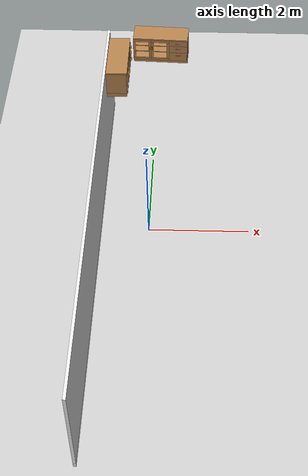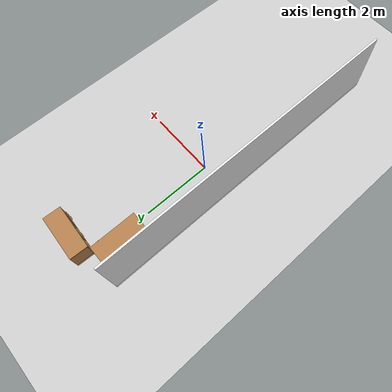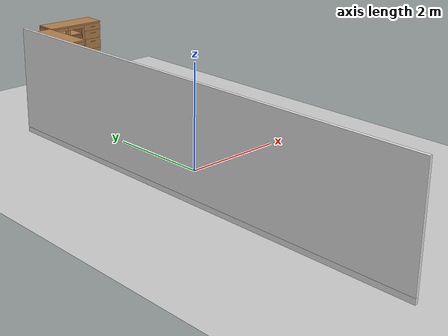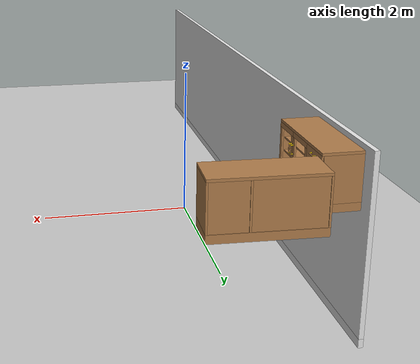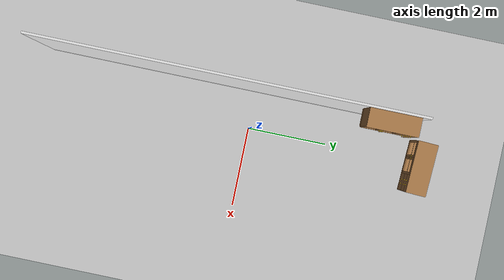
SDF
<sdf version="1.6">
 <world name="default">
  <model name="ground_plane">
   <static>1</static>
   <link name="link">
    <collision name="collision">
     <geometry><plane><normal>0 0 1</normal><size>100 100</size></plane></geometry>
     <surface><friction><ode><mu>100</mu><mu2>50</mu2></ode></friction></surface>
    </collision>
    <visual name="visual">
     <cast_shadows>0</cast_shadows>
     <geometry><plane><normal>0 0 1</normal><size>100 100</size></plane></geometry>
     <material>
      <script><uri>file://media/materials/scripts/gazebo.material</uri><name>Gazebo/Grey</name></script>
     </material>
    </visual>
   </link>
  </model>
  <model name="living_sideboard_0">
   <link name="link">
    <inertial>
     <mass>10</mass>
     <inertia><ixx>1</ixx><ixy>0</ixy><ixz>0</ixz><iyy>1</iyy><iyz>0</iyz><izz>1</izz></inertia>
    </inertial>
    <visual name="left_board">
     <pose>-0.23 0.01 0.3375 0 -0 0</pose>
     <geometry><box><size>0.42 0.02 0.495</size></box></geometry>
     <material>
      <script><uri>model://base_materials/wood/scripts/wood.material</uri><name>base_materials/wood</name></script>
     </material>
    </visual>
    <collision name="collision_left_board">
     <pose>-0.23 0.01 0.3375 0 -0 0</pose>
     <geometry><box><size>0.42 0.02 0.495</size></box></geometry>
    </collision>
    <visual name="back_board">
     <pose>-0.42 0.575 0.2925 0 -0 0</pose>
     <geometry><box><size>0.02 1.11 0.585</size></box></geometry>
     <material>
      <script><uri>model://base_materials/wood/scripts/wood.material</uri><name>base_materials/wood</name></script>
     </material>
    </visual>
    <collision name="collision_back_board">
     <pose>-0.42 0.575 0.2925 0 -0 0</pose>
     <geometry><box><size>0.02 1.11 0.585</size></box></geometry>
    </collision>
    <visual name="right_board">
     <pose>-0.23 1.14 0.3375 0 -0 0</pose>
     <geometry><box><size>0.42 0.02 0.495</size></box></geometry>
     <material>
      <script><uri>model://base_materials/wood/scripts/wood.material</uri><name>base_materials/wood</name></script>
     </material>
    </visual>
    <collision name="collision_right_board">
     <pose>-0.23 1.14 0.3375 0 -0 0</pose>
     <geometry><box><size>0.42 0.02 0.495</size></box></geometry>
    </collision>
    <visual name="center_vertical_board1">
     <pose>-0.23 0.74 0.3375 0 -0 0</pose>
     <geometry><box><size>0.42 0.02 0.495</size></box></geometry>
     <material>
      <script><uri>model://base_materials/wood/scripts/wood.material</uri><name>base_materials/wood</name></script>
     </material>
    </visual>
    <collision name="collision_center_vertical_board1">
     <pose>-0.23 0.74 0.3375 0 -0 0</pose>
     <geometry><box><size>0.42 0.02 0.495</size></box></geometry>
    </collision>
    <visual name="top_board">
     <pose>-0.22 0.575 0.6 0 -0 0</pose>
     <geometry><box><size>0.44 1.15 0.03</size></box></geometry>
     <material>
      <script><uri>model://base_materials/wood/scripts/wood.material</uri><name>base_materials/wood</name></script>
     </material>
    </visual>
    <collision name="collision_top_board">
     <pose>-0.22 0.575 0.6 0 -0 0</pose>
     <geometry><box><size>0.44 1.15 0.03</size></box></geometry>
    </collision>
    <visual name="bottom_board">
     <pose>-0.23 0.575 0.045 0 -0 0</pose>
     <geometry><box><size>0.42 1.15 0.09</size></box></geometry>
     <material>
      <script><uri>model://base_materials/wood/scripts/wood.material</uri><name>base_materials/wood</name></script>
     </material>
    </visual>
    <collision name="collision_bottom_board">
     <pose>-0.23 0.575 0.045 0 -0 0</pose>
     <geometry><box><size>0.42 1.15 0.09</size></box></geometry>
    </collision>
    <visual name="1st_shelf">
     <pose>-0.225 0.37 0.259 0 -0 0</pose>
     <geometry><box><size>0.36 0.72 0.018</size></box></geometry>
     <material>
      <script><uri>model://base_materials/wood/scripts/wood.material</uri><name>base_materials/wood</name></script>
     </material>
    </visual>
    <collision name="collision_1st_shelf">
     <pose>-0.225 0.37 0.259 0 -0 0</pose>
     <geometry><box><size>0.36 0.72 0.018</size></box></geometry>
    </collision>
    <visual name="2nd_shelf">
     <pose>-0.225 0.37 0.407 0 -0 0</pose>
     <geometry><box><size>0.36 0.72 0.018</size></box></geometry>
     <material>
      <script><uri>model://base_materials/wood/scripts/wood.material</uri><name>base_materials/wood</name></script>
     </material>
    </visual>
    <collision name="collision_2nd_shelf">
     <pose>-0.225 0.37 0.407 0 -0 0</pose>
     <geometry><box><size>0.36 0.72 0.018</size></box></geometry>
    </collision>
    <visual name="1st_drawer">
     <pose>-0.2025 0.95 0.52 0 -0 0</pose>
     <geometry><box><size>0.405 0.38 0.13</size></box></geometry>
     <material>
      <script><uri>model://base_materials/wood/scripts/wood.material</uri><name>base_materials/wood</name></script>
     </material>
    </visual>
    <collision name="collision_1st_drawer">
     <pose>-0.2025 0.95 0.52 0 -0 0</pose>
     <geometry><box><size>0.405 0.38 0.13</size></box></geometry>
    </collision>
    <visual name="1st_drawer_handle_l1">
     <pose>0.015 0.9015 0.535 3.14159 1.57079 3.14159</pose>
     <geometry><cylinder><radius>0.006</radius><length>0.03</length></cylinder></geometry>
     <material>
      <ambient>1 0.84314 0 1</ambient>
      <diffuse>1 0.84314 0 1</diffuse>
      <specular>0.1 0.1 0.1 1</specular>
     </material>
    </visual>
    <collision name="collision_1st_drawer_handle_l1">
     <pose>0.015 0.9015 0.535 3.14159 1.57079 3.14159</pose>
     <geometry><cylinder><radius>0.006</radius><length>0.03</length></cylinder></geometry>
    </collision>
    <visual name="1st_drawer_handle_l2">
     <pose>0.03 0.9015 0.535 0 -0 0</pose>
     <geometry><sphere><radius>0.006</radius></sphere></geometry>
     <material>
      <ambient>1 0.84314 0 1</ambient>
      <diffuse>1 0.84314 0 1</diffuse>
      <specular>0.1 0.1 0.1 1</specular>
     </material>
    </visual>
    <collision name="collision_1st_drawer_handle_l2">
     <pose>0.03 0.9015 0.535 0 -0 0</pose>
     <geometry><sphere><radius>0.006</radius></sphere></geometry>
    </collision>
    <visual name="1st_drawer_handle_r1">
     <pose>0.015 0.9985 0.535 3.14159 1.57079 3.14159</pose>
     <geometry><cylinder><radius>0.006</radius><length>0.03</length></cylinder></geometry>
     <material>
      <ambient>1 0.84314 0 1</ambient>
      <diffuse>1 0.84314 0 1</diffuse>
      <specular>0.1 0.1 0.1 1</specular>
     </material>
    </visual>
    <collision name="collision_1st_drawer_handle_r1">
     <pose>0.015 0.9985 0.535 3.14159 1.57079 3.14159</pose>
     <geometry><cylinder><radius>0.006</radius><length>0.03</length></cylinder></geometry>
    </collision>
    <visual name="1st_drawer_handle_r2">
     <pose>0.03 0.9985 0.535 0 -0 0</pose>
     <geometry><sphere><radius>0.006</radius></sphere></geometry>
     <material>
      <ambient>1 0.84314 0 1</ambient>
      <diffuse>1 0.84314 0 1</diffuse>
      <specular>0.1 0.1 0.1 1</specular>
     </material>
    </visual>
    <collision name="collision_1st_drawer_handle_r2">
     <pose>0.03 0.9985 0.535 0 -0 0</pose>
     <geometry><sphere><radius>0.006</radius></sphere></geometry>
    </collision>
    <visual name="1st_drawer_handle_center">
     <pose>0.03 0.95 0.535 1.5708 -0 0</pose>
     <geometry><cylinder><radius>0.006</radius><length>0.097</length></cylinder></geometry>
     <material>
      <script><uri>model://base_materials/wood/scripts/wood.material</uri><name>base_materials/wood</name></script>
     </material>
    </visual>
    <collision name="collision_1st_drawer_handle_center">
     <pose>0.03 0.95 0.535 1.5708 -0 0</pose>
     <geometry><cylinder><radius>0.006</radius><length>0.097</length></cylinder></geometry>
    </collision>
    <visual name="2nd_drawer">
     <pose>-0.2025 0.95 0.37 0 -0 0</pose>
     <geometry><box><size>0.405 0.38 0.17</size></box></geometry>
     <material>
      <script><uri>model://base_materials/wood/scripts/wood.material</uri><name>base_materials/wood</name></script>
     </material>
    </visual>
    <collision name="collision_2nd_drawer">
     <pose>-0.2025 0.95 0.37 0 -0 0</pose>
     <geometry><box><size>0.405 0.38 0.17</size></box></geometry>
    </collision>
    <visual name="2nd_drawer_handle_l1">
     <pose>0.015 0.9015 0.405 3.14159 1.57079 3.14159</pose>
     <geometry><cylinder><radius>0.006</radius><length>0.03</length></cylinder></geometry>
     <material>
      <ambient>1 0.84314 0 1</ambient>
      <diffuse>1 0.84314 0 1</diffuse>
      <specular>0.1 0.1 0.1 1</specular>
     </material>
    </visual>
    <collision name="collision_2nd_drawer_handle_l1">
     <pose>0.015 0.9015 0.405 3.14159 1.57079 3.14159</pose>
     <geometry><cylinder><radius>0.006</radius><length>0.03</length></cylinder></geometry>
    </collision>
    <visual name="2nd_drawer_handle_l2">
     <pose>0.03 0.9015 0.405 0 -0 0</pose>
     <geometry><sphere><radius>0.006</radius></sphere></geometry>
     <material>
      <ambient>1 0.84314 0 1</ambient>
      <diffuse>1 0.84314 0 1</diffuse>
      <specular>0.1 0.1 0.1 1</specular>
     </material>
    </visual>
    <collision name="collision_2nd_drawer_handle_l2">
     <pose>0.03 0.9015 0.405 0 -0 0</pose>
     <geometry><sphere><radius>0.006</radius></sphere></geometry>
    </collision>
    <visual name="2nd_drawer_handle_r1">
     <pose>0.015 0.9985 0.405 3.14159 1.57079 3.14159</pose>
     <geometry><cylinder><radius>0.006</radius><length>0.03</length></cylinder></geometry>
     <material>
      <ambient>1 0.84314 0 1</ambient>
      <diffuse>1 0.84314 0 1</diffuse>
      <specular>0.1 0.1 0.1 1</specular>
     </material>
    </visual>
    <collision name="collision_2nd_drawer_handle_r1">
     <pose>0.015 0.9985 0.405 3.14159 1.57079 3.14159</pose>
     <geometry><cylinder><radius>0.006</radius><length>0.03</length></cylinder></geometry>
    </collision>
    <visual name="2nd_drawer_handle_r2">
     <pose>0.03 0.9985 0.405 0 -0 0</pose>
     <geometry><sphere><radius>0.006</radius></sphere></geometry>
     <material>
      <ambient>1 0.84314 0 1</ambient>
      <diffuse>1 0.84314 0 1</diffuse>
      <specular>0.1 0.1 0.1 1</specular>
     </material>
    </visual>
    <collision name="collision_2nd_drawer_handle_r2">
     <pose>0.03 0.9985 0.405 0 -0 0</pose>
     <geometry><sphere><radius>0.006</radius></sphere></geometry>
    </collision>
    <visual name="2nd_drawer_handle_center">
     <pose>0.03 0.95 0.405 1.5708 -0 0</pose>
     <geometry><cylinder><radius>0.006</radius><length>0.097</length></cylinder></geometry>
     <material>
      <script><uri>model://base_materials/wood/scripts/wood.material</uri><name>base_materials/wood</name></script>
     </material>
    </visual>
    <collision name="collision_2nd_drawer_handle_center">
     <pose>0.03 0.95 0.405 1.5708 -0 0</pose>
     <geometry><cylinder><radius>0.006</radius><length>0.097</length></cylinder></geometry>
    </collision>
    <visual name="3rd_drawer">
     <pose>-0.2025 0.95 0.18 0 -0 0</pose>
     <geometry><box><size>0.405 0.38 0.21</size></box></geometry>
     <material>
      <script><uri>model://base_materials/wood/scripts/wood.material</uri><name>base_materials/wood</name></script>
     </material>
    </visual>
    <collision name="collision_3rd_drawer">
     <pose>-0.2025 0.95 0.18 0 -0 0</pose>
     <geometry><box><size>0.405 0.38 0.21</size></box></geometry>
    </collision>
    <visual name="3rd_drawer_handle_l1">
     <pose>0.015 0.9015 0.235 3.14159 1.57079 3.14159</pose>
     <geometry><cylinder><radius>0.006</radius><length>0.03</length></cylinder></geometry>
     <material>
      <ambient>1 0.84314 0 1</ambient>
      <diffuse>1 0.84314 0 1</diffuse>
      <specular>0.1 0.1 0.1 1</specular>
     </material>
    </visual>
    <collision name="collision_3rd_drawer_handle_l1">
     <pose>0.015 0.9015 0.235 3.14159 1.57079 3.14159</pose>
     <geometry><cylinder><radius>0.006</radius><length>0.03</length></cylinder></geometry>
    </collision>
    <visual name="3rd_drawer_handle_l2">
     <pose>0.03 0.9015 0.235 0 -0 0</pose>
     <geometry><sphere><radius>0.006</radius></sphere></geometry>
     <material>
      <ambient>1 0.84314 0 1</ambient>
      <diffuse>1 0.84314 0 1</diffuse>
      <specular>0.1 0.1 0.1 1</specular>
     </material>
    </visual>
    <collision name="collision_3rd_drawer_handle_l2">
     <pose>0.03 0.9015 0.235 0 -0 0</pose>
     <geometry><sphere><radius>0.006</radius></sphere></geometry>
    </collision>
    <visual name="3rd_drawer_handle_r1">
     <pose>0.015 0.9985 0.235 3.14159 1.57079 3.14159</pose>
     <geometry><cylinder><radius>0.006</radius><length>0.03</length></cylinder></geometry>
     <material>
      <ambient>1 0.84314 0 1</ambient>
      <diffuse>1 0.84314 0 1</diffuse>
      <specular>0.1 0.1 0.1 1</specular>
     </material>
    </visual>
    <collision name="collision_3rd_drawer_handle_r1">
     <pose>0.015 0.9985 0.235 3.14159 1.57079 3.14159</pose>
     <geometry><cylinder><radius>0.006</radius><length>0.03</length></cylinder></geometry>
    </collision>
    <visual name="3rd_drawer_handle_r2">
     <pose>0.03 0.9985 0.235 0 -0 0</pose>
     <geometry><sphere><radius>0.006</radius></sphere></geometry>
     <material>
      <ambient>1 0.84314 0 1</ambient>
      <diffuse>1 0.84314 0 1</diffuse>
      <specular>0.1 0.1 0.1 1</specular>
     </material>
    </visual>
    <collision name="collision_3rd_drawer_handle_r2">
     <pose>0.03 0.9985 0.235 0 -0 0</pose>
     <geometry><sphere><radius>0.006</radius></sphere></geometry>
    </collision>
    <visual name="3rd_drawer_handle_center">
     <pose>0.03 0.95 0.235 1.5708 -0 0</pose>
     <geometry><cylinder><radius>0.006</radius><length>0.097</length></cylinder></geometry>
     <material>
      <script><uri>model://base_materials/wood/scripts/wood.material</uri><name>base_materials/wood</name></script>
     </material>
    </visual>
    <collision name="collision_3rd_drawer_handle_center">
     <pose>0.03 0.95 0.235 1.5708 -0 0</pose>
     <geometry><cylinder><radius>0.006</radius><length>0.097</length></cylinder></geometry>
    </collision>
    <visual name="left_door_left_frame">
     <pose>-0.01 0.025 0.3275 0 -0 0</pose>
     <geometry><box><size>0.02 0.05 0.405</size></box></geometry>
     <material>
      <script><uri>model://base_materials/wood/scripts/wood.material</uri><name>base_materials/wood</name></script>
     </material>
    </visual>
    <collision name="collision_left_door_left_frame">
     <pose>-0.01 0.025 0.3275 0 -0 0</pose>
     <geometry><box><size>0.02 0.05 0.405</size></box></geometry>
    </collision>
    <visual name="left_door_right_frame">
     <pose>-0.01 0.355 0.3275 0 -0 0</pose>
     <geometry><box><size>0.02 0.05 0.405</size></box></geometry>
     <material>
      <script><uri>model://base_materials/wood/scripts/wood.material</uri><name>base_materials/wood</name></script>
     </material>
    </visual>
    <collision name="collision_left_door_right_frame">
     <pose>-0.01 0.355 0.3275 0 -0 0</pose>
     <geometry><box><size>0.02 0.05 0.405</size></box></geometry>
    </collision>
    <visual name="left_door_handle_top1">
     <pose>0.015 0.355 0.4475 3.14159 1.57079 3.14159</pose>
     <geometry><cylinder><radius>0.006</radius><length>0.03</length></cylinder></geometry>
     <material>
      <ambient>1 0.84314 0 1</ambient>
      <diffuse>1 0.84314 0 1</diffuse>
      <specular>0.1 0.1 0.1 1</specular>
     </material>
    </visual>
    <collision name="collision_left_door_handle_top1">
     <pose>0.015 0.355 0.4475 3.14159 1.57079 3.14159</pose>
     <geometry><cylinder><radius>0.006</radius><length>0.03</length></cylinder></geometry>
    </collision>
    <visual name="left_door_handle_top2">
     <pose>0.03 0.355 0.4475 0 -0 0</pose>
     <geometry><sphere><radius>0.006</radius></sphere></geometry>
     <material>
      <ambient>1 0.84314 0 1</ambient>
      <diffuse>1 0.84314 0 1</diffuse>
      <specular>0.1 0.1 0.1 1</specular>
     </material>
    </visual>
    <collision name="collision_left_door_handle_top2">
     <pose>0.03 0.355 0.4475 0 -0 0</pose>
     <geometry><sphere><radius>0.006</radius></sphere></geometry>
    </collision>
    <visual name="left_door_handle_bottom1">
     <pose>0.015 0.355 0.3505 3.14159 1.57079 3.14159</pose>
     <geometry><cylinder><radius>0.006</radius><length>0.03</length></cylinder></geometry>
     <material>
      <ambient>1 0.84314 0 1</ambient>
      <diffuse>1 0.84314 0 1</diffuse>
      <specular>0.1 0.1 0.1 1</specular>
     </material>
    </visual>
    <collision name="collision_left_door_handle_bottom1">
     <pose>0.015 0.355 0.3505 3.14159 1.57079 3.14159</pose>
     <geometry><cylinder><radius>0.006</radius><length>0.03</length></cylinder></geometry>
    </collision>
    <visual name="left_door_handle_bottom2">
     <pose>0.03 0.355 0.3505 0 -0 0</pose>
     <geometry><sphere><radius>0.006</radius></sphere></geometry>
     <material>
      <ambient>1 0.84314 0 1</ambient>
      <diffuse>1 0.84314 0 1</diffuse>
      <specular>0.1 0.1 0.1 1</specular>
     </material>
    </visual>
    <collision name="collision_left_door_handle_bottom2">
     <pose>0.03 0.355 0.3505 0 -0 0</pose>
     <geometry><sphere><radius>0.006</radius></sphere></geometry>
    </collision>
    <visual name="left_door_handle_center">
     <pose>0.03 0.355 0.399 0 -0 0</pose>
     <geometry><cylinder><radius>0.006</radius><length>0.097</length></cylinder></geometry>
     <material>
      <script><uri>model://base_materials/wood/scripts/wood.material</uri><name>base_materials/wood</name></script>
     </material>
    </visual>
    <collision name="collision_left_door_handle_center">
     <pose>0.03 0.355 0.399 0 -0 0</pose>
     <geometry><cylinder><radius>0.006</radius><length>0.097</length></cylinder></geometry>
    </collision>
    <visual name="left_door_top_frame">
     <pose>-0.01 0.19 0.5575 0 -0 0</pose>
     <geometry><box><size>0.02 0.38 0.055</size></box></geometry>
     <material>
      <script><uri>model://base_materials/wood/scripts/wood.material</uri><name>base_materials/wood</name></script>
     </material>
    </visual>
    <collision name="collision_left_door_top_frame">
     <pose>-0.01 0.19 0.5575 0 -0 0</pose>
     <geometry><box><size>0.02 0.38 0.055</size></box></geometry>
    </collision>
    <visual name="left_door_bottom_frame">
     <pose>-0.01 0.19 0.1 0 -0 0</pose>
     <geometry><box><size>0.02 0.38 0.05</size></box></geometry>
     <material>
      <script><uri>model://base_materials/wood/scripts/wood.material</uri><name>base_materials/wood</name></script>
     </material>
    </visual>
    <collision name="collision_left_door_bottom_frame">
     <pose>-0.01 0.19 0.1 0 -0 0</pose>
     <geometry><box><size>0.02 0.38 0.05</size></box></geometry>
    </collision>
    <visual name="right_door_left_frame">
     <pose>-0.01 0.405 0.3275 0 -0 0</pose>
     <geometry><box><size>0.02 0.05 0.405</size></box></geometry>
     <material>
      <script><uri>model://base_materials/wood/scripts/wood.material</uri><name>base_materials/wood</name></script>
     </material>
    </visual>
    <collision name="collision_right_door_left_frame">
     <pose>-0.01 0.405 0.3275 0 -0 0</pose>
     <geometry><box><size>0.02 0.05 0.405</size></box></geometry>
    </collision>
    <visual name="right_door_right_frame">
     <pose>-0.01 0.735 0.3275 0 -0 0</pose>
     <geometry><box><size>0.02 0.05 0.405</size></box></geometry>
     <material>
      <script><uri>model://base_materials/wood/scripts/wood.material</uri><name>base_materials/wood</name></script>
     </material>
    </visual>
    <collision name="collision_right_door_right_frame">
     <pose>-0.01 0.735 0.3275 0 -0 0</pose>
     <geometry><box><size>0.02 0.05 0.405</size></box></geometry>
    </collision>
    <visual name="right_door_top_frame">
     <pose>-0.01 0.57 0.5575 0 -0 0</pose>
     <geometry><box><size>0.02 0.38 0.055</size></box></geometry>
     <material>
      <script><uri>model://base_materials/wood/scripts/wood.material</uri><name>base_materials/wood</name></script>
     </material>
    </visual>
    <collision name="collision_right_door_top_frame">
     <pose>-0.01 0.57 0.5575 0 -0 0</pose>
     <geometry><box><size>0.02 0.38 0.055</size></box></geometry>
    </collision>
    <visual name="right_door_bottom_frame">
     <pose>-0.01 0.57 0.1 0 -0 0</pose>
     <geometry><box><size>0.02 0.38 0.05</size></box></geometry>
     <material>
      <script><uri>model://base_materials/wood/scripts/wood.material</uri><name>base_materials/wood</name></script>
     </material>
    </visual>
    <collision name="collision_right_door_bottom_frame">
     <pose>-0.01 0.57 0.1 0 -0 0</pose>
     <geometry><box><size>0.02 0.38 0.05</size></box></geometry>
    </collision>
    <visual name="right_door_handle_top1">
     <pose>0.015 0.405 0.4475 3.14159 1.57079 3.14159</pose>
     <geometry><cylinder><radius>0.006</radius><length>0.03</length></cylinder></geometry>
     <material>
      <ambient>1 0.84314 0 1</ambient>
      <diffuse>1 0.84314 0 1</diffuse>
      <specular>0.1 0.1 0.1 1</specular>
     </material>
    </visual>
    <collision name="collision_right_door_handle_top1">
     <pose>0.015 0.405 0.4475 3.14159 1.57079 3.14159</pose>
     <geometry><cylinder><radius>0.006</radius><length>0.03</length></cylinder></geometry>
    </collision>
    <visual name="right_door_handle_top2">
     <pose>0.03 0.405 0.4475 0 -0 0</pose>
     <geometry><sphere><radius>0.006</radius></sphere></geometry>
     <material>
      <ambient>1 0.84314 0 1</ambient>
      <diffuse>1 0.84314 0 1</diffuse>
      <specular>0.1 0.1 0.1 1</specular>
     </material>
    </visual>
    <collision name="collision_right_door_handle_top2">
     <pose>0.03 0.405 0.4475 0 -0 0</pose>
     <geometry><sphere><radius>0.006</radius></sphere></geometry>
    </collision>
    <visual name="right_door_handle_bottom1">
     <pose>0.015 0.405 0.3505 3.14159 1.57079 3.14159</pose>
     <geometry><cylinder><radius>0.006</radius><length>0.03</length></cylinder></geometry>
     <material>
      <ambient>1 0.84314 0 1</ambient>
      <diffuse>1 0.84314 0 1</diffuse>
      <specular>0.1 0.1 0.1 1</specular>
     </material>
    </visual>
    <collision name="collision_right_door_handle_bottom1">
     <pose>0.015 0.405 0.3505 3.14159 1.57079 3.14159</pose>
     <geometry><cylinder><radius>0.006</radius><length>0.03</length></cylinder></geometry>
    </collision>
    <visual name="right_door_handle_bottom2">
     <pose>0.03 0.405 0.3505 0 -0 0</pose>
     <geometry><sphere><radius>0.006</radius></sphere></geometry>
     <material>
      <ambient>1 0.84314 0 1</ambient>
      <diffuse>1 0.84314 0 1</diffuse>
      <specular>0.1 0.1 0.1 1</specular>
     </material>
    </visual>
    <collision name="collision_right_door_handle_bottom2">
     <pose>0.03 0.405 0.3505 0 -0 0</pose>
     <geometry><sphere><radius>0.006</radius></sphere></geometry>
    </collision>
    <visual name="right_door_handle_center">
     <pose>0.03 0.405 0.399 0 -0 0</pose>
     <geometry><cylinder><radius>0.006</radius><length>0.097</length></cylinder></geometry>
     <material>
      <script><uri>model://base_materials/wood/scripts/wood.material</uri><name>base_materials/wood</name></script>
     </material>
    </visual>
    <collision name="collision_right_door_handle_center">
     <pose>0.03 0.4 0.399 0 -0 0</pose>
     <geometry><cylinder><radius>0.006</radius><length>0.097</length></cylinder></geometry>
    </collision>
    <velocity_decay><linear>0</linear><angular>0</angular></velocity_decay>
   </link>
   <static>1</static>
   <pose>-0.465342 3.57264 1.4001 0 0 -1.61604</pose>
  </model>
  <model name="living_sideboard_1">
   <link name="link">
    <inertial>
     <mass>10</mass>
     <inertia><ixx>1</ixx><ixy>0</ixy><ixz>0</ixz><iyy>1</iyy><iyz>0</iyz><izz>1</izz></inertia>
    </inertial>
    <visual name="left_board">
     <pose>-0.23 0.01 0.3375 0 -0 0</pose>
     <geometry><box><size>0.42 0.02 0.495</size></box></geometry>
     <material>
      <script><uri>model://base_materials/wood/scripts/wood.material</uri><name>base_materials/wood</name></script>
     </material>
    </visual>
    <collision name="collision_left_board">
     <pose>-0.23 0.01 0.3375 0 -0 0</pose>
     <geometry><box><size>0.42 0.02 0.495</size></box></geometry>
    </collision>
    <visual name="back_board">
     <pose>-0.42 0.575 0.2925 0 -0 0</pose>
     <geometry><box><size>0.02 1.11 0.585</size></box></geometry>
     <material>
      <script><uri>model://base_materials/wood/scripts/wood.material</uri><name>base_materials/wood</name></script>
     </material>
    </visual>
    <collision name="collision_back_board">
     <pose>-0.42 0.575 0.2925 0 -0 0</pose>
     <geometry><box><size>0.02 1.11 0.585</size></box></geometry>
    </collision>
    <visual name="right_board">
     <pose>-0.23 1.14 0.3375 0 -0 0</pose>
     <geometry><box><size>0.42 0.02 0.495</size></box></geometry>
     <material>
      <script><uri>model://base_materials/wood/scripts/wood.material</uri><name>base_materials/wood</name></script>
     </material>
    </visual>
    <collision name="collision_right_board">
     <pose>-0.23 1.14 0.3375 0 -0 0</pose>
     <geometry><box><size>0.42 0.02 0.495</size></box></geometry>
    </collision>
    <visual name="center_vertical_board1">
     <pose>-0.23 0.74 0.3375 0 -0 0</pose>
     <geometry><box><size>0.42 0.02 0.495</size></box></geometry>
     <material>
      <script><uri>model://base_materials/wood/scripts/wood.material</uri><name>base_materials/wood</name></script>
     </material>
    </visual>
    <collision name="collision_center_vertical_board1">
     <pose>-0.23 0.74 0.3375 0 -0 0</pose>
     <geometry><box><size>0.42 0.02 0.495</size></box></geometry>
    </collision>
    <visual name="top_board">
     <pose>-0.22 0.575 0.6 0 -0 0</pose>
     <geometry><box><size>0.44 1.15 0.03</size></box></geometry>
     <material>
      <script><uri>model://base_materials/wood/scripts/wood.material</uri><name>base_materials/wood</name></script>
     </material>
    </visual>
    <collision name="collision_top_board">
     <pose>-0.22 0.575 0.6 0 -0 0</pose>
     <geometry><box><size>0.44 1.15 0.03</size></box></geometry>
    </collision>
    <visual name="bottom_board">
     <pose>-0.23 0.575 0.045 0 -0 0</pose>
     <geometry><box><size>0.42 1.15 0.09</size></box></geometry>
     <material>
      <script><uri>model://base_materials/wood/scripts/wood.material</uri><name>base_materials/wood</name></script>
     </material>
    </visual>
    <collision name="collision_bottom_board">
     <pose>-0.23 0.575 0.045 0 -0 0</pose>
     <geometry><box><size>0.42 1.15 0.09</size></box></geometry>
    </collision>
    <visual name="1st_shelf">
     <pose>-0.225 0.37 0.259 0 -0 0</pose>
     <geometry><box><size>0.36 0.72 0.018</size></box></geometry>
     <material>
      <script><uri>model://base_materials/wood/scripts/wood.material</uri><name>base_materials/wood</name></script>
     </material>
    </visual>
    <collision name="collision_1st_shelf">
     <pose>-0.225 0.37 0.259 0 -0 0</pose>
     <geometry><box><size>0.36 0.72 0.018</size></box></geometry>
    </collision>
    <visual name="2nd_shelf">
     <pose>-0.225 0.37 0.407 0 -0 0</pose>
     <geometry><box><size>0.36 0.72 0.018</size></box></geometry>
     <material>
      <script><uri>model://base_materials/wood/scripts/wood.material</uri><name>base_materials/wood</name></script>
     </material>
    </visual>
    <collision name="collision_2nd_shelf">
     <pose>-0.225 0.37 0.407 0 -0 0</pose>
     <geometry><box><size>0.36 0.72 0.018</size></box></geometry>
    </collision>
    <visual name="1st_drawer">
     <pose>-0.2025 0.95 0.52 0 -0 0</pose>
     <geometry><box><size>0.405 0.38 0.13</size></box></geometry>
     <material>
      <script><uri>model://base_materials/wood/scripts/wood.material</uri><name>base_materials/wood</name></script>
     </material>
    </visual>
    <collision name="collision_1st_drawer">
     <pose>-0.2025 0.95 0.52 0 -0 0</pose>
     <geometry><box><size>0.405 0.38 0.13</size></box></geometry>
    </collision>
    <visual name="1st_drawer_handle_l1">
     <pose>0.015 0.9015 0.535 3.14159 1.57079 3.14159</pose>
     <geometry><cylinder><radius>0.006</radius><length>0.03</length></cylinder></geometry>
     <material>
      <ambient>1 0.84314 0 1</ambient>
      <diffuse>1 0.84314 0 1</diffuse>
      <specular>0.1 0.1 0.1 1</specular>
     </material>
    </visual>
    <collision name="collision_1st_drawer_handle_l1">
     <pose>0.015 0.9015 0.535 3.14159 1.57079 3.14159</pose>
     <geometry><cylinder><radius>0.006</radius><length>0.03</length></cylinder></geometry>
    </collision>
    <visual name="1st_drawer_handle_l2">
     <pose>0.03 0.9015 0.535 0 -0 0</pose>
     <geometry><sphere><radius>0.006</radius></sphere></geometry>
     <material>
      <ambient>1 0.84314 0 1</ambient>
      <diffuse>1 0.84314 0 1</diffuse>
      <specular>0.1 0.1 0.1 1</specular>
     </material>
    </visual>
    <collision name="collision_1st_drawer_handle_l2">
     <pose>0.03 0.9015 0.535 0 -0 0</pose>
     <geometry><sphere><radius>0.006</radius></sphere></geometry>
    </collision>
    <visual name="1st_drawer_handle_r1">
     <pose>0.015 0.9985 0.535 3.14159 1.57079 3.14159</pose>
     <geometry><cylinder><radius>0.006</radius><length>0.03</length></cylinder></geometry>
     <material>
      <ambient>1 0.84314 0 1</ambient>
      <diffuse>1 0.84314 0 1</diffuse>
      <specular>0.1 0.1 0.1 1</specular>
     </material>
    </visual>
    <collision name="collision_1st_drawer_handle_r1">
     <pose>0.015 0.9985 0.535 3.14159 1.57079 3.14159</pose>
     <geometry><cylinder><radius>0.006</radius><length>0.03</length></cylinder></geometry>
    </collision>
    <visual name="1st_drawer_handle_r2">
     <pose>0.03 0.9985 0.535 0 -0 0</pose>
     <geometry><sphere><radius>0.006</radius></sphere></geometry>
     <material>
      <ambient>1 0.84314 0 1</ambient>
      <diffuse>1 0.84314 0 1</diffuse>
      <specular>0.1 0.1 0.1 1</specular>
     </material>
    </visual>
    <collision name="collision_1st_drawer_handle_r2">
     <pose>0.03 0.9985 0.535 0 -0 0</pose>
     <geometry><sphere><radius>0.006</radius></sphere></geometry>
    </collision>
    <visual name="1st_drawer_handle_center">
     <pose>0.03 0.95 0.535 1.5708 -0 0</pose>
     <geometry><cylinder><radius>0.006</radius><length>0.097</length></cylinder></geometry>
     <material>
      <script><uri>model://base_materials/wood/scripts/wood.material</uri><name>base_materials/wood</name></script>
     </material>
    </visual>
    <collision name="collision_1st_drawer_handle_center">
     <pose>0.03 0.95 0.535 1.5708 -0 0</pose>
     <geometry><cylinder><radius>0.006</radius><length>0.097</length></cylinder></geometry>
    </collision>
    <visual name="2nd_drawer">
     <pose>-0.2025 0.95 0.37 0 -0 0</pose>
     <geometry><box><size>0.405 0.38 0.17</size></box></geometry>
     <material>
      <script><uri>model://base_materials/wood/scripts/wood.material</uri><name>base_materials/wood</name></script>
     </material>
    </visual>
    <collision name="collision_2nd_drawer">
     <pose>-0.2025 0.95 0.37 0 -0 0</pose>
     <geometry><box><size>0.405 0.38 0.17</size></box></geometry>
    </collision>
    <visual name="2nd_drawer_handle_l1">
     <pose>0.015 0.9015 0.405 3.14159 1.57079 3.14159</pose>
     <geometry><cylinder><radius>0.006</radius><length>0.03</length></cylinder></geometry>
     <material>
      <ambient>1 0.84314 0 1</ambient>
      <diffuse>1 0.84314 0 1</diffuse>
      <specular>0.1 0.1 0.1 1</specular>
     </material>
    </visual>
    <collision name="collision_2nd_drawer_handle_l1">
     <pose>0.015 0.9015 0.405 3.14159 1.57079 3.14159</pose>
     <geometry><cylinder><radius>0.006</radius><length>0.03</length></cylinder></geometry>
    </collision>
    <visual name="2nd_drawer_handle_l2">
     <pose>0.03 0.9015 0.405 0 -0 0</pose>
     <geometry><sphere><radius>0.006</radius></sphere></geometry>
     <material>
      <ambient>1 0.84314 0 1</ambient>
      <diffuse>1 0.84314 0 1</diffuse>
      <specular>0.1 0.1 0.1 1</specular>
     </material>
    </visual>
    <collision name="collision_2nd_drawer_handle_l2">
     <pose>0.03 0.9015 0.405 0 -0 0</pose>
     <geometry><sphere><radius>0.006</radius></sphere></geometry>
    </collision>
    <visual name="2nd_drawer_handle_r1">
     <pose>0.015 0.9985 0.405 3.14159 1.57079 3.14159</pose>
     <geometry><cylinder><radius>0.006</radius><length>0.03</length></cylinder></geometry>
     <material>
      <ambient>1 0.84314 0 1</ambient>
      <diffuse>1 0.84314 0 1</diffuse>
      <specular>0.1 0.1 0.1 1</specular>
     </material>
    </visual>
    <collision name="collision_2nd_drawer_handle_r1">
     <pose>0.015 0.9985 0.405 3.14159 1.57079 3.14159</pose>
     <geometry><cylinder><radius>0.006</radius><length>0.03</length></cylinder></geometry>
    </collision>
    <visual name="2nd_drawer_handle_r2">
     <pose>0.03 0.9985 0.405 0 -0 0</pose>
     <geometry><sphere><radius>0.006</radius></sphere></geometry>
     <material>
      <ambient>1 0.84314 0 1</ambient>
      <diffuse>1 0.84314 0 1</diffuse>
      <specular>0.1 0.1 0.1 1</specular>
     </material>
    </visual>
    <collision name="collision_2nd_drawer_handle_r2">
     <pose>0.03 0.9985 0.405 0 -0 0</pose>
     <geometry><sphere><radius>0.006</radius></sphere></geometry>
    </collision>
    <visual name="2nd_drawer_handle_center">
     <pose>0.03 0.95 0.405 1.5708 -0 0</pose>
     <geometry><cylinder><radius>0.006</radius><length>0.097</length></cylinder></geometry>
     <material>
      <script><uri>model://base_materials/wood/scripts/wood.material</uri><name>base_materials/wood</name></script>
     </material>
    </visual>
    <collision name="collision_2nd_drawer_handle_center">
     <pose>0.03 0.95 0.405 1.5708 -0 0</pose>
     <geometry><cylinder><radius>0.006</radius><length>0.097</length></cylinder></geometry>
    </collision>
    <visual name="3rd_drawer">
     <pose>-0.2025 0.95 0.18 0 -0 0</pose>
     <geometry><box><size>0.405 0.38 0.21</size></box></geometry>
     <material>
      <script><uri>model://base_materials/wood/scripts/wood.material</uri><name>base_materials/wood</name></script>
     </material>
    </visual>
    <collision name="collision_3rd_drawer">
     <pose>-0.2025 0.95 0.18 0 -0 0</pose>
     <geometry><box><size>0.405 0.38 0.21</size></box></geometry>
    </collision>
    <visual name="3rd_drawer_handle_l1">
     <pose>0.015 0.9015 0.235 3.14159 1.57079 3.14159</pose>
     <geometry><cylinder><radius>0.006</radius><length>0.03</length></cylinder></geometry>
     <material>
      <ambient>1 0.84314 0 1</ambient>
      <diffuse>1 0.84314 0 1</diffuse>
      <specular>0.1 0.1 0.1 1</specular>
     </material>
    </visual>
    <collision name="collision_3rd_drawer_handle_l1">
     <pose>0.015 0.9015 0.235 3.14159 1.57079 3.14159</pose>
     <geometry><cylinder><radius>0.006</radius><length>0.03</length></cylinder></geometry>
    </collision>
    <visual name="3rd_drawer_handle_l2">
     <pose>0.03 0.9015 0.235 0 -0 0</pose>
     <geometry><sphere><radius>0.006</radius></sphere></geometry>
     <material>
      <ambient>1 0.84314 0 1</ambient>
      <diffuse>1 0.84314 0 1</diffuse>
      <specular>0.1 0.1 0.1 1</specular>
     </material>
    </visual>
    <collision name="collision_3rd_drawer_handle_l2">
     <pose>0.03 0.9015 0.235 0 -0 0</pose>
     <geometry><sphere><radius>0.006</radius></sphere></geometry>
    </collision>
    <visual name="3rd_drawer_handle_r1">
     <pose>0.015 0.9985 0.235 3.14159 1.57079 3.14159</pose>
     <geometry><cylinder><radius>0.006</radius><length>0.03</length></cylinder></geometry>
     <material>
      <ambient>1 0.84314 0 1</ambient>
      <diffuse>1 0.84314 0 1</diffuse>
      <specular>0.1 0.1 0.1 1</specular>
     </material>
    </visual>
    <collision name="collision_3rd_drawer_handle_r1">
     <pose>0.015 0.9985 0.235 3.14159 1.57079 3.14159</pose>
     <geometry><cylinder><radius>0.006</radius><length>0.03</length></cylinder></geometry>
    </collision>
    <visual name="3rd_drawer_handle_r2">
     <pose>0.03 0.9985 0.235 0 -0 0</pose>
     <geometry><sphere><radius>0.006</radius></sphere></geometry>
     <material>
      <ambient>1 0.84314 0 1</ambient>
      <diffuse>1 0.84314 0 1</diffuse>
      <specular>0.1 0.1 0.1 1</specular>
     </material>
    </visual>
    <collision name="collision_3rd_drawer_handle_r2">
     <pose>0.03 0.9985 0.235 0 -0 0</pose>
     <geometry><sphere><radius>0.006</radius></sphere></geometry>
    </collision>
    <visual name="3rd_drawer_handle_center">
     <pose>0.03 0.95 0.235 1.5708 -0 0</pose>
     <geometry><cylinder><radius>0.006</radius><length>0.097</length></cylinder></geometry>
     <material>
      <script><uri>model://base_materials/wood/scripts/wood.material</uri><name>base_materials/wood</name></script>
     </material>
    </visual>
    <collision name="collision_3rd_drawer_handle_center">
     <pose>0.03 0.95 0.235 1.5708 -0 0</pose>
     <geometry><cylinder><radius>0.006</radius><length>0.097</length></cylinder></geometry>
    </collision>
    <visual name="left_door_left_frame">
     <pose>-0.01 0.025 0.3275 0 -0 0</pose>
     <geometry><box><size>0.02 0.05 0.405</size></box></geometry>
     <material>
      <script><uri>model://base_materials/wood/scripts/wood.material</uri><name>base_materials/wood</name></script>
     </material>
    </visual>
    <collision name="collision_left_door_left_frame">
     <pose>-0.01 0.025 0.3275 0 -0 0</pose>
     <geometry><box><size>0.02 0.05 0.405</size></box></geometry>
    </collision>
    <visual name="left_door_right_frame">
     <pose>-0.01 0.355 0.3275 0 -0 0</pose>
     <geometry><box><size>0.02 0.05 0.405</size></box></geometry>
     <material>
      <script><uri>model://base_materials/wood/scripts/wood.material</uri><name>base_materials/wood</name></script>
     </material>
    </visual>
    <collision name="collision_left_door_right_frame">
     <pose>-0.01 0.355 0.3275 0 -0 0</pose>
     <geometry><box><size>0.02 0.05 0.405</size></box></geometry>
    </collision>
    <visual name="left_door_handle_top1">
     <pose>0.015 0.355 0.4475 3.14159 1.57079 3.14159</pose>
     <geometry><cylinder><radius>0.006</radius><length>0.03</length></cylinder></geometry>
     <material>
      <ambient>1 0.84314 0 1</ambient>
      <diffuse>1 0.84314 0 1</diffuse>
      <specular>0.1 0.1 0.1 1</specular>
     </material>
    </visual>
    <collision name="collision_left_door_handle_top1">
     <pose>0.015 0.355 0.4475 3.14159 1.57079 3.14159</pose>
     <geometry><cylinder><radius>0.006</radius><length>0.03</length></cylinder></geometry>
    </collision>
    <visual name="left_door_handle_top2">
     <pose>0.03 0.355 0.4475 0 -0 0</pose>
     <geometry><sphere><radius>0.006</radius></sphere></geometry>
     <material>
      <ambient>1 0.84314 0 1</ambient>
      <diffuse>1 0.84314 0 1</diffuse>
      <specular>0.1 0.1 0.1 1</specular>
     </material>
    </visual>
    <collision name="collision_left_door_handle_top2">
     <pose>0.03 0.355 0.4475 0 -0 0</pose>
     <geometry><sphere><radius>0.006</radius></sphere></geometry>
    </collision>
    <visual name="left_door_handle_bottom1">
     <pose>0.015 0.355 0.3505 3.14159 1.57079 3.14159</pose>
     <geometry><cylinder><radius>0.006</radius><length>0.03</length></cylinder></geometry>
     <material>
      <ambient>1 0.84314 0 1</ambient>
      <diffuse>1 0.84314 0 1</diffuse>
      <specular>0.1 0.1 0.1 1</specular>
     </material>
    </visual>
    <collision name="collision_left_door_handle_bottom1">
     <pose>0.015 0.355 0.3505 3.14159 1.57079 3.14159</pose>
     <geometry><cylinder><radius>0.006</radius><length>0.03</length></cylinder></geometry>
    </collision>
    <visual name="left_door_handle_bottom2">
     <pose>0.03 0.355 0.3505 0 -0 0</pose>
     <geometry><sphere><radius>0.006</radius></sphere></geometry>
     <material>
      <ambient>1 0.84314 0 1</ambient>
      <diffuse>1 0.84314 0 1</diffuse>
      <specular>0.1 0.1 0.1 1</specular>
     </material>
    </visual>
    <collision name="collision_left_door_handle_bottom2">
     <pose>0.03 0.355 0.3505 0 -0 0</pose>
     <geometry><sphere><radius>0.006</radius></sphere></geometry>
    </collision>
    <visual name="left_door_handle_center">
     <pose>0.03 0.355 0.399 0 -0 0</pose>
     <geometry><cylinder><radius>0.006</radius><length>0.097</length></cylinder></geometry>
     <material>
      <script><uri>model://base_materials/wood/scripts/wood.material</uri><name>base_materials/wood</name></script>
     </material>
    </visual>
    <collision name="collision_left_door_handle_center">
     <pose>0.03 0.355 0.399 0 -0 0</pose>
     <geometry><cylinder><radius>0.006</radius><length>0.097</length></cylinder></geometry>
    </collision>
    <visual name="left_door_top_frame">
     <pose>-0.01 0.19 0.5575 0 -0 0</pose>
     <geometry><box><size>0.02 0.38 0.055</size></box></geometry>
     <material>
      <script><uri>model://base_materials/wood/scripts/wood.material</uri><name>base_materials/wood</name></script>
     </material>
    </visual>
    <collision name="collision_left_door_top_frame">
     <pose>-0.01 0.19 0.5575 0 -0 0</pose>
     <geometry><box><size>0.02 0.38 0.055</size></box></geometry>
    </collision>
    <visual name="left_door_bottom_frame">
     <pose>-0.01 0.19 0.1 0 -0 0</pose>
     <geometry><box><size>0.02 0.38 0.05</size></box></geometry>
     <material>
      <script><uri>model://base_materials/wood/scripts/wood.material</uri><name>base_materials/wood</name></script>
     </material>
    </visual>
    <collision name="collision_left_door_bottom_frame">
     <pose>-0.01 0.19 0.1 0 -0 0</pose>
     <geometry><box><size>0.02 0.38 0.05</size></box></geometry>
    </collision>
    <visual name="right_door_left_frame">
     <pose>-0.01 0.405 0.3275 0 -0 0</pose>
     <geometry><box><size>0.02 0.05 0.405</size></box></geometry>
     <material>
      <script><uri>model://base_materials/wood/scripts/wood.material</uri><name>base_materials/wood</name></script>
     </material>
    </visual>
    <collision name="collision_right_door_left_frame">
     <pose>-0.01 0.405 0.3275 0 -0 0</pose>
     <geometry><box><size>0.02 0.05 0.405</size></box></geometry>
    </collision>
    <visual name="right_door_right_frame">
     <pose>-0.01 0.735 0.3275 0 -0 0</pose>
     <geometry><box><size>0.02 0.05 0.405</size></box></geometry>
     <material>
      <script><uri>model://base_materials/wood/scripts/wood.material</uri><name>base_materials/wood</name></script>
     </material>
    </visual>
    <collision name="collision_right_door_right_frame">
     <pose>-0.01 0.735 0.3275 0 -0 0</pose>
     <geometry><box><size>0.02 0.05 0.405</size></box></geometry>
    </collision>
    <visual name="right_door_top_frame">
     <pose>-0.01 0.57 0.5575 0 -0 0</pose>
     <geometry><box><size>0.02 0.38 0.055</size></box></geometry>
     <material>
      <script><uri>model://base_materials/wood/scripts/wood.material</uri><name>base_materials/wood</name></script>
     </material>
    </visual>
    <collision name="collision_right_door_top_frame">
     <pose>-0.01 0.57 0.5575 0 -0 0</pose>
     <geometry><box><size>0.02 0.38 0.055</size></box></geometry>
    </collision>
    <visual name="right_door_bottom_frame">
     <pose>-0.01 0.57 0.1 0 -0 0</pose>
     <geometry><box><size>0.02 0.38 0.05</size></box></geometry>
     <material>
      <script><uri>model://base_materials/wood/scripts/wood.material</uri><name>base_materials/wood</name></script>
     </material>
    </visual>
    <collision name="collision_right_door_bottom_frame">
     <pose>-0.01 0.57 0.1 0 -0 0</pose>
     <geometry><box><size>0.02 0.38 0.05</size></box></geometry>
    </collision>
    <visual name="right_door_handle_top1">
     <pose>0.015 0.405 0.4475 3.14159 1.57079 3.14159</pose>
     <geometry><cylinder><radius>0.006</radius><length>0.03</length></cylinder></geometry>
     <material>
      <ambient>1 0.84314 0 1</ambient>
      <diffuse>1 0.84314 0 1</diffuse>
      <specular>0.1 0.1 0.1 1</specular>
     </material>
    </visual>
    <collision name="collision_right_door_handle_top1">
     <pose>0.015 0.405 0.4475 3.14159 1.57079 3.14159</pose>
     <geometry><cylinder><radius>0.006</radius><length>0.03</length></cylinder></geometry>
    </collision>
    <visual name="right_door_handle_top2">
     <pose>0.03 0.405 0.4475 0 -0 0</pose>
     <geometry><sphere><radius>0.006</radius></sphere></geometry>
     <material>
      <ambient>1 0.84314 0 1</ambient>
      <diffuse>1 0.84314 0 1</diffuse>
      <specular>0.1 0.1 0.1 1</specular>
     </material>
    </visual>
    <collision name="collision_right_door_handle_top2">
     <pose>0.03 0.405 0.4475 0 -0 0</pose>
     <geometry><sphere><radius>0.006</radius></sphere></geometry>
    </collision>
    <visual name="right_door_handle_bottom1">
     <pose>0.015 0.405 0.3505 3.14159 1.57079 3.14159</pose>
     <geometry><cylinder><radius>0.006</radius><length>0.03</length></cylinder></geometry>
     <material>
      <ambient>1 0.84314 0 1</ambient>
      <diffuse>1 0.84314 0 1</diffuse>
      <specular>0.1 0.1 0.1 1</specular>
     </material>
    </visual>
    <collision name="collision_right_door_handle_bottom1">
     <pose>0.015 0.405 0.3505 3.14159 1.57079 3.14159</pose>
     <geometry><cylinder><radius>0.006</radius><length>0.03</length></cylinder></geometry>
    </collision>
    <visual name="right_door_handle_bottom2">
     <pose>0.03 0.405 0.3505 0 -0 0</pose>
     <geometry><sphere><radius>0.006</radius></sphere></geometry>
     <material>
      <ambient>1 0.84314 0 1</ambient>
      <diffuse>1 0.84314 0 1</diffuse>
      <specular>0.1 0.1 0.1 1</specular>
     </material>
    </visual>
    <collision name="collision_right_door_handle_bottom2">
     <pose>0.03 0.405 0.3505 0 -0 0</pose>
     <geometry><sphere><radius>0.006</radius></sphere></geometry>
    </collision>
    <visual name="right_door_handle_center">
     <pose>0.03 0.405 0.399 0 -0 0</pose>
     <geometry><cylinder><radius>0.006</radius><length>0.097</length></cylinder></geometry>
     <material>
      <script><uri>model://base_materials/wood/scripts/wood.material</uri><name>base_materials/wood</name></script>
     </material>
    </visual>
    <collision name="collision_right_door_handle_center">
     <pose>0.03 0.4 0.399 0 -0 0</pose>
     <geometry><cylinder><radius>0.006</radius><length>0.097</length></cylinder></geometry>
    </collision>
    <velocity_decay><linear>0</linear><angular>0</angular></velocity_decay>
   </link>
   <static>1</static>
   <pose>-0.519727 2.40393 1.41593 0 -0 0</pose>
  </model>
  <model name="full_wall_55_8295_2090">
   <link name="link">
    <inertial>
     <mass>54.1823</mass>
     <inertia><ixx>382.705</ixx><ixy>0</ixy><ixz>0</ixz><iyy>17.8943</iyy><iyz>0</iyz><izz>364.838</izz></inertia>
    </inertial>
    <velocity_decay><linear>0</linear><angular>0</angular></velocity_decay>
    <pose>0 -0.705123 0 0 -0 0</pose>
    <visual name="wall">
     <pose>0 0 1.095 0 -0 0</pose>
     <geometry><box><size>0.055 8.98885 1.99</size></box></geometry>
     <material>
      <script>
       <uri>model://base_materials/wall/scripts</uri>
       <uri>model://base_materials/wall/textures</uri>
       <name>wall/white_noise</name>
      </script>
     </material>
    </visual>
    <visual name="bottom_frame">
     <pose>0 0 0.05 0 -0 0</pose>
     <geometry><box><size>0.055 8.98885 0.1</size></box></geometry>
     <material>
      <script><uri>model://base_materials/color/scripts</uri><name>hsr_color/white</name></script>
     </material>
    </visual>
    <collision name="collision_bottom_frame">
     <pose>0 0 0.05 0 -0 0</pose>
     <geometry><box><size>0.055 8.98885 0.1</size></box></geometry>
     <surface>
      <friction>
       <ode><mu>1</mu><mu2>1</mu2><fdir1>0 0 0</fdir1><slip1>0</slip1><slip2>0</slip2></ode>
       <torsional>
        <coefficient>1</coefficient>
        <patch_radius>0</patch_radius>
        <surface_radius>0</surface_radius>
        <use_patch_radius>1</use_patch_radius>
        <ode><slip>0</slip></ode>
       </torsional>
      </friction>
      <bounce><restitution_coefficient>0</restitution_coefficient><threshold>1e+06</threshold></bounce>
      <contact>
       <collide_without_contact>0</collide_without_contact>
       <collide_without_contact_bitmask>1</collide_without_contact_bitmask>
       <collide_bitmask>1</collide_bitmask>
       <ode>
        <soft_cfm>0</soft_cfm>
        <soft_erp>0.2</soft_erp>
        <kp>1e+13</kp>
        <kd>1</kd>
        <max_vel>0.01</max_vel>
        <min_depth>0</min_depth>
       </ode>
       <bullet>
        <split_impulse>1</split_impulse>
        <split_impulse_penetration_threshold>-0.01</split_impulse_penetration_threshold>
        <soft_cfm>0</soft_cfm>
        <soft_erp>0.2</soft_erp>
        <kp>1e+13</kp>
        <kd>1</kd>
       </bullet>
      </contact>
     </surface>
    </collision>
    <collision name="collision_wall">
     <pose>0 0 1.095 0 -0 0</pose>
     <geometry><box><size>0.055 8.98885 1.99</size></box></geometry>
     <surface>
      <friction>
       <ode><mu>1</mu><mu2>1</mu2><fdir1>0 0 0</fdir1><slip1>0</slip1><slip2>0</slip2></ode>
       <torsional>
        <coefficient>1</coefficient>
        <patch_radius>0</patch_radius>
        <surface_radius>0</surface_radius>
        <use_patch_radius>1</use_patch_radius>
        <ode><slip>0</slip></ode>
       </torsional>
      </friction>
      <bounce><restitution_coefficient>0</restitution_coefficient><threshold>1e+06</threshold></bounce>
      <contact>
       <collide_without_contact>0</collide_without_contact>
       <collide_without_contact_bitmask>1</collide_without_contact_bitmask>
       <collide_bitmask>1</collide_bitmask>
       <ode>
        <soft_cfm>0</soft_cfm>
        <soft_erp>0.2</soft_erp>
        <kp>1e+13</kp>
        <kd>1</kd>
        <max_vel>0.01</max_vel>
        <min_depth>0</min_depth>
       </ode>
       <bullet>
        <split_impulse>1</split_impulse>
        <split_impulse_penetration_threshold>-0.01</split_impulse_penetration_threshold>
        <soft_cfm>0</soft_cfm>
        <soft_erp>0.2</soft_erp>
        <kp>1e+13</kp>
        <kd>1</kd>
       </bullet>
      </contact>
     </surface>
    </collision>
   </link>
   <static>1</static>
   <pose>-0.979337 -0.051627 0 0 -0 0</pose>
  </model>
 </world>
</sdf>
